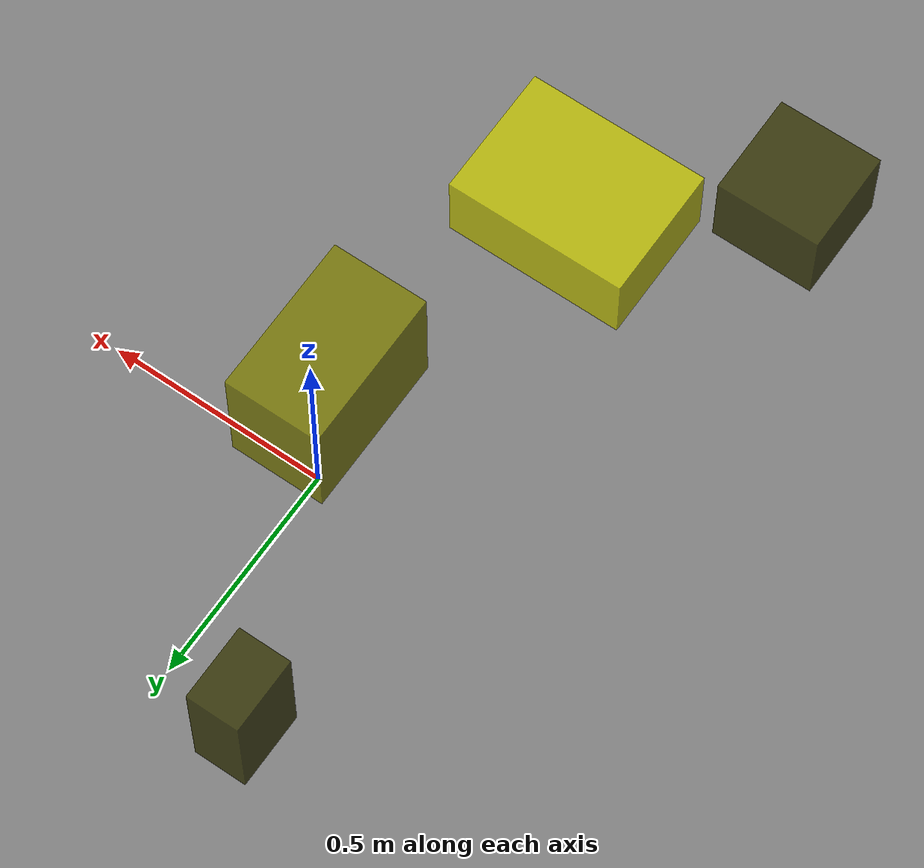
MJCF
<?xml version="1.0"?>
<mujoco model="obstacle_scene">
  <compiler angle="radian" coordinate="local"/>
  <option timestep="0.001" gravity="0 0 -9.81"/>

  <asset>
    <material name="obstacle_mat" rgba="0.8 0.8 0.0 0.8"/>
    <material name="ground_mat" rgba="0.5 0.5 0.5 1"/>
  </asset>

  <worldbody>
    <!-- Ground plane -->
    <geom name="ground" type="plane" size="3 3 0.1" material="ground_mat"/>

    <!-- Obstacles -->
    <body name="obstacle_0" pos="-0.580289 -0.768926 0.627757">
      <geom name="obs_0" type="box" size="0.110136 0.109162 0.092677" rgba="0.2 0.2 0.0 0.8"/>
    </body>
    <body name="obstacle_1" pos="-0.154947 0.136353 0.888115">
      <geom name="obs_1" type="box" size="0.098751 0.164002 0.132940" rgba="0.5 0.5 0.0 0.8"/>
    </body>
    <body name="obstacle_2" pos="-0.167849 -0.650546 0.346425">
      <geom name="obs_2" type="box" size="0.199949 0.147544 0.088939" rgba="0.8 0.8 0.0 0.8"/>
    </body>
    <body name="obstacle_3" pos="-0.394356 0.724179 0.861460">
      <geom name="obs_3" type="box" size="0.053882 0.076038 0.131729" rgba="0.2 0.2 0.0 0.8"/>
    </body>
  </worldbody>
</mujoco>
